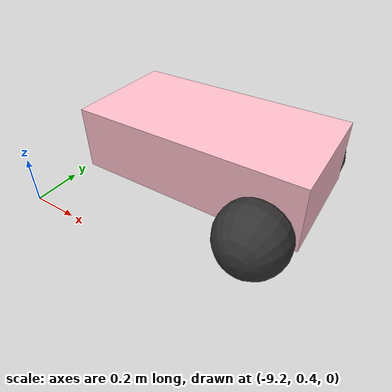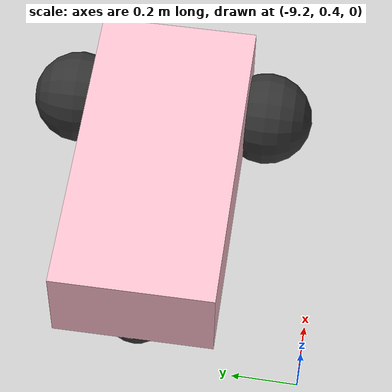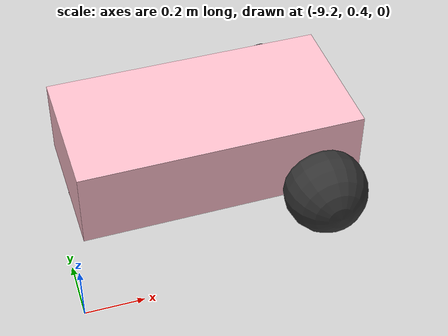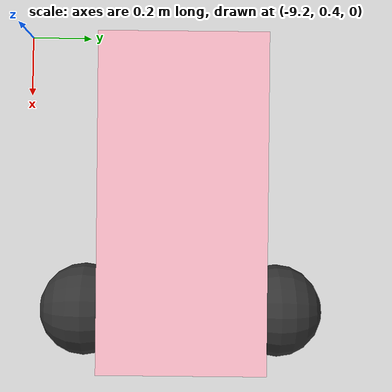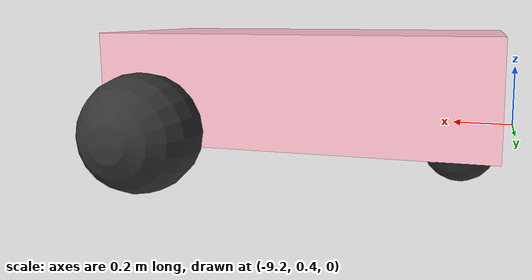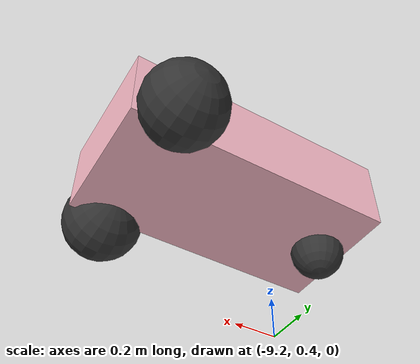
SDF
<?xml version="1.0" ?>
<sdf version="1.6">
  <model name='robot2'>
      <pose>-8.56738 0.922519 0.1007575 9e-06 0 0.012346</pose>
      <link name='base_link'>
        <pose>-0.0757135 -0 0.0875 0 -0 0</pose>
        <inertial>
          <mass>1.14395</mass>
          <inertia>
            <ixx>0.126164</ixx>
            <ixy>0</ixy>
            <ixz>0</ixz>
            <iyy>0.416519</iyy>
            <iyz>0</iyz>
            <izz>0.481014</izz>
          </inertia>
          <pose>0 0 0 0 -0 0</pose>
        </inertial>
        <visual name='visual'>
          <geometry>
            <box>
              <size>1.00571 0.5 0.284363</size>
            </box>
          </geometry>
          <material>
            <ambient>1.0 0.75 0.8 1.0</ambient>
            <diffuse>1.0 0.75 0.8 1.0</diffuse>
            <specular>1.0 0.8 0.8 1.0</specular>
          </material>
        </visual>
        <collision name='collision'>
          <geometry>
            <box>
              <size>1.00571 0.5 0.284363</size>
            </box>
          </geometry>
          <max_contacts>10</max_contacts>
          <surface>
            <contact>
              <ode/>
            </contact>
            <bounce/>
            <friction>
              <torsional>
                <ode/>
              </torsional>
              <ode/>
            </friction>
          </surface>
        </collision>
        <self_collide>0</self_collide>
        <enable_wind>0</enable_wind>
        <kinematic>0</kinematic>
      </link>
      <link name='left_wheel'>
        <pose>0.2771415 0.3125145 -0.0125 -1.5707 0 0</pose>
        <inertial>
          <mass>2</mass>
          <inertia>
            <ixx>0.145833</ixx>
            <ixy>0</ixy>
            <ixz>0</ixz>
            <iyy>0.145833</iyy>
            <iyz>0</iyz>
            <izz>0.125</izz>
          </inertia>
          <pose>0 0 0 0 -0 0</pose>
        </inertial>
        <visual name='visual'>
          <geometry>
            <sphere>
              <radius>0.15</radius>
            </sphere>
          </geometry>
          <material>
            <ambient>0.1 0.1 0.1 1.0</ambient>
            <diffuse>0.2 0.2 0.2 1.0</diffuse>
            <specular>0.3 0.3 0.3 1.0</specular>
          </material>
        </visual>
        <collision name='collision'>
          <geometry>
            <sphere>
              <radius>0.15</radius>
            </sphere>
          </geometry>
          <surface>
            <friction>
              <ode>
                <mu>1</mu>
                <mu2>1</mu2>
                <slip1>0</slip1>
                <slip2>0</slip2>
              </ode>
              <torsional>
                <ode/>
              </torsional>
            </friction>
            <contact>
              <ode>
                <soft_cfm>0</soft_cfm>
                <soft_erp>0.2</soft_erp>
                <kp>1e+13</kp>
                <kd>1</kd>
                <max_vel>0.01</max_vel>
                <min_depth>0.01</min_depth>
              </ode>
            </contact>
            <bounce/>
          </surface>
          <max_contacts>10</max_contacts>
        </collision>
        <self_collide>0</self_collide>
        <enable_wind>0</enable_wind>
        <kinematic>0</kinematic>
      </link>
      <link name='right_wheel'>
        <pose>0.277141 -0.3125145 -0.0125 -1.5707 0 0</pose>
        <inertial>
          <mass>2</mass>
          <inertia>
            <ixx>0.145833</ixx>
            <ixy>0</ixy>
            <ixz>0</ixz>
            <iyy>0.145833</iyy>
            <iyz>0</iyz>
            <izz>0.125</izz>
          </inertia>
          <pose>0 0 0 0 -0 0</pose>
        </inertial>
        <visual name='visual'>
          <geometry>
            <sphere>
              <radius>0.15</radius>
            </sphere>
          </geometry>
          <material>
            <ambient>0.1 0.1 0.1 1.0</ambient>
            <diffuse>0.2 0.2 0.2 1.0</diffuse>
            <specular>0.3 0.3 0.3 1.0</specular>
          </material>
        </visual>
        <collision name='collision'>
          <geometry>
            <sphere>
              <radius>0.15</radius>
            </sphere>
          </geometry>
          <surface>
            <friction>
              <ode>
                <mu>1</mu>
                <mu2>1</mu2>
                <slip1>0</slip1>
                <slip2>0</slip2>
              </ode>
              <torsional>
                <ode/>
              </torsional>
            </friction>
            <contact>
              <ode>
                <soft_cfm>0</soft_cfm>
                <soft_erp>0.2</soft_erp>
                <kp>1e+13</kp>
                <kd>1</kd>
                <max_vel>0.01</max_vel>
                <min_depth>0.01</min_depth>
              </ode>
            </contact>
            <bounce/>
          </surface>
          <max_contacts>10</max_contacts>
        </collision>
        <self_collide>0</self_collide>
        <enable_wind>0</enable_wind>
        <kinematic>0</kinematic>
      </link>
      <link name='caster'>
        <pose>-0.478569 -0 -0.0625 0 -0 0</pose>
        <inertial>
          <mass>1</mass>
          <inertia>
            <ixx>0.1</ixx>
            <ixy>0</ixy>
            <ixz>0</ixz>
            <iyy>0.1</iyy>
            <iyz>0</iyz>
            <izz>0.1</izz>
          </inertia>
          <pose>0 0 0 0 -0 0</pose>
        </inertial>
        <visual name='visual'>
          <geometry>
            <sphere>
              <radius>0.1</radius>
            </sphere>
          </geometry>
          <material>
            <ambient>0.1 0.1 0.1 1.0</ambient>
            <diffuse>0.2 0.2 0.2 1.0</diffuse>
            <specular>0.3 0.3 0.3 1.0</specular>
          </material>
        </visual>
        <collision name='collision'>
          <geometry>
            <sphere>
              <radius>0.1</radius>
            </sphere>
          </geometry>
          <max_contacts>10</max_contacts>
          <surface>
            <contact>
              <ode/>
            </contact>
            <bounce/>
            <friction>
              <torsional>
                <ode/>
              </torsional>
              <ode/>
            </friction>
          </surface>
        </collision>
        <self_collide>0</self_collide>
        <enable_wind>0</enable_wind>
        <kinematic>0</kinematic>
      </link>
      <joint name='left_wheel_joint' type='revolute'>
        <parent>base_link</parent>
        <child>left_wheel</child>
        <axis>
          <xyz>0 0 1</xyz>
          <limit>
            <lower>-1.79769e+308</lower>
            <upper>1.79769e+308</upper>
          </limit>
          <dynamics>
            <spring_reference>0</spring_reference>
            <spring_stiffness>0</spring_stiffness>
          </dynamics>
        </axis>
      </joint>
      <joint name='right_wheel_joint' type='revolute'>
        <parent>base_link</parent>
        <child>right_wheel</child>
        <axis>
          <xyz>0 0 1</xyz>
          <limit>
            <lower>-1.79769e+308</lower>
            <upper>1.79769e+308</upper>
          </limit>
          <dynamics>
            <spring_reference>0</spring_reference>
            <spring_stiffness>0</spring_stiffness>
          </dynamics>
        </axis>
      </joint>
      <joint name='caster_wheel' type='ball'>
        <parent>base_link</parent>
        <child>caster</child>
      </joint>
      <plugin name="gazebo_ros_diff_drive" filename="libgazebo_ros_diff_drive.so">
        <ros>
          <namespace>/robot2</namespace> <!-- Adicionado namespace único -->
          <remapping>odom:=odom</remapping>
        </ros>
        <publishOdomTf>1</publishOdomTf>
        <commandTopic>cmd_vel</commandTopic>
        <odometryTopic>odom</odometryTopic>
        <odometrySource>WORLD</odometrySource>
        <publish_odom>1</publish_odom>
        <robotBaseFrame>base_link</robotBaseFrame>
        <left_joint>left_wheel_joint</left_joint>
        <right_joint>right_wheel_joint</right_joint>
      </plugin>
    </model>
</sdf>
